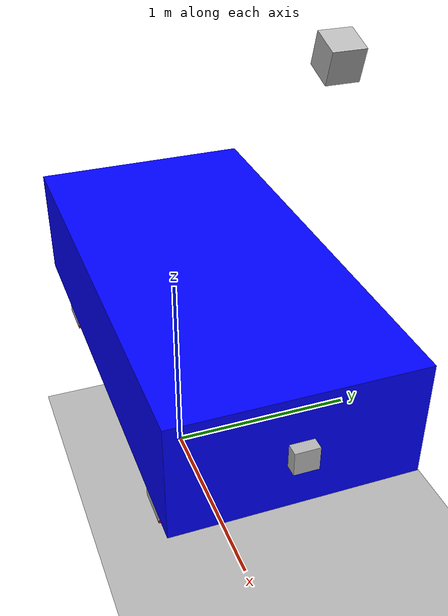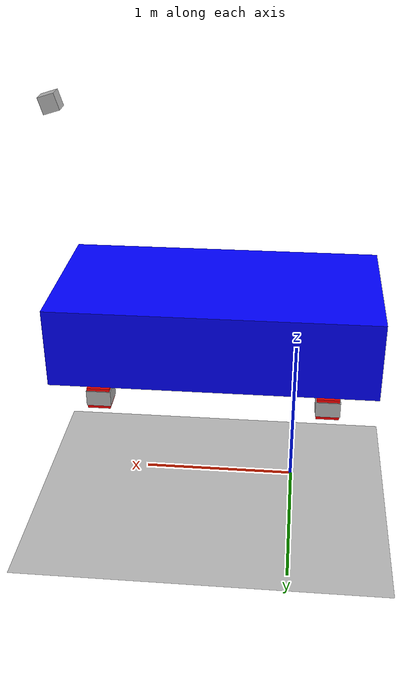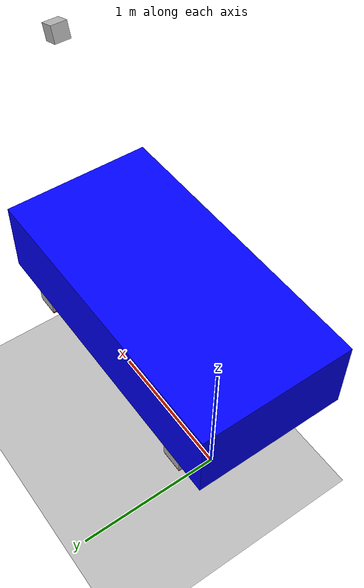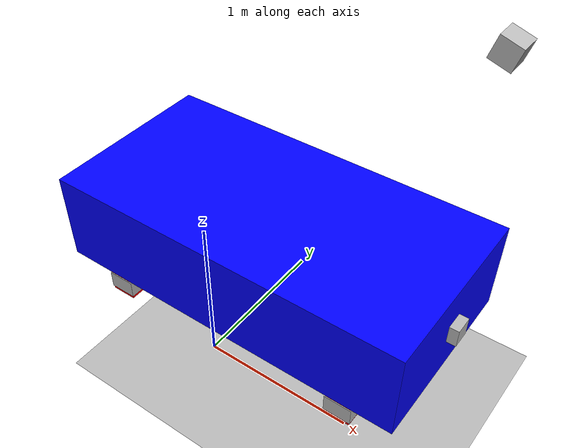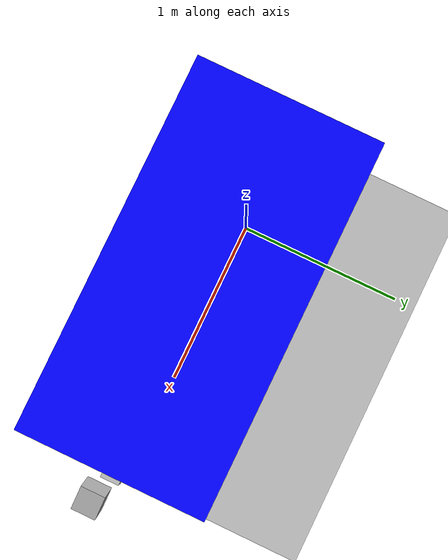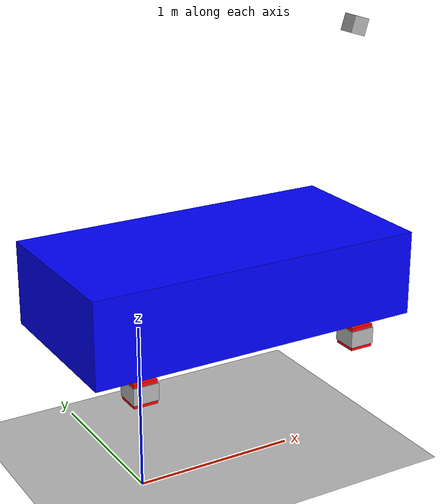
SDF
<?xml version="1.0" ?>
<sdf version="1.7">
    <world name="car_world">
        <physics name="1ms" type="ignored">
            <max_step_size>0.001</max_step_size>
            <real_time_factor>1.0</real_time_factor>
        </physics>
        <plugin
            filename="ignition-gazebo-physics-system"
            name="ignition::gazebo::systems::Physics">
        </plugin>
        <plugin
      	    filename="ignition-gazebo-sensors-system"
      	    name="ignition::gazebo::systems::Sensors">
      	    <render_engine>ogre</render_engine>
    	</plugin>
        <plugin
            filename="ignition-gazebo-user-commands-system"
            name="ignition::gazebo::systems::UserCommands">
        </plugin>
        <plugin
            filename="ignition-gazebo-scene-broadcaster-system"
            name="ignition::gazebo::systems::SceneBroadcaster">
        </plugin>

        <gui fullscreen="0">

            <!-- 3D scene -->
            <plugin filename="GzScene3D" name="3D View">
                <ignition-gui>
                <title>3D View</title>
                <property type="bool" key="showTitleBar">false</property>
                <property type="string" key="state">docked</property>
                </ignition-gui>

                <engine>ogre2</engine>
                <scene>scene</scene>
                <ambient_light>0.4 0.4 0.4</ambient_light>
                <background_color>0.8 0.8 0.8</background_color>
            </plugin>

            <!-- World control -->
            <plugin filename="WorldControl" name="World control">
                <ignition-gui>
                <title>World control</title>
                <property type="bool" key="showTitleBar">false</property>
                <property type="bool" key="resizable">false</property>
                <property type="double" key="height">72</property>
                <property type="double" key="width">121</property>
                <property type="double" key="z">1</property>

                <property type="string" key="state">floating</property>
                <anchors target="3D View">
                    <line own="left" target="left"/>
                    <line own="bottom" target="bottom"/>
                </anchors>
                </ignition-gui>

                <play_pause>true</play_pause>
                <step>true</step>
                <start_paused>true</start_paused>
                <service>/world/car_world/control</service>
                <stats_topic>/world/car_world/stats</stats_topic>
            </plugin>

            <!-- World statistics -->
            <plugin filename="WorldStats" name="World stats">
                <ignition-gui>
                <title>World stats</title>
                <property type="bool" key="showTitleBar">false</property>
                <property type="bool" key="resizable">false</property>
                <property type="double" key="height">110</property>
                <property type="double" key="width">290</property>
                <property type="double" key="z">1</property>

                <property type="string" key="state">floating</property>
                <anchors target="3D View">
                    <line own="right" target="right"/>
                    <line own="bottom" target="bottom"/>
                </anchors>
                </ignition-gui>

                <sim_time>true</sim_time>
                <real_time>true</real_time>
                <real_time_factor>true</real_time_factor>
                <iterations>true</iterations>
                <topic>/world/car_world/stats</topic>

            </plugin>

            <!-- Entity tree -->
            <plugin filename="EntityTree" name="Entity tree">
            </plugin>

            <plugin filename="KeyPublisher" name="Key Publisher"/>

            <plugin filename="ImageDisplay" name="Image Display"/>

        </gui>

        <light type="directional" name="sun">
            <cast_shadows>true</cast_shadows>
            <pose>0 0 10 0 0 0</pose>
            <diffuse>0.8 0.8 0.8 1</diffuse>
            <specular>0.2 0.2 0.2 1</specular>
            <attenuation>
                <range>1000</range>
                <constant>0.9</constant>
                <linear>0.01</linear>
                <quadratic>0.001</quadratic>
            </attenuation>
            <direction>-0.5 0.1 -0.9</direction>
        </light>

        <model name="ground_plane">
            <static>true</static>
            <link name="link">
                <collision name="collision">
                <geometry>
                    <plane>
                    <normal>0 0 1</normal>
                    </plane>
                </geometry>
                <surface>
                    <friction>
                        <ode>
                            <mu>0.7</mu>
                            <mu2>0.7</mu2>
                        </ode>
                    </friction>
                </surface>
                </collision>
            </link>
        </model>

        <model name='vehicle_blue' canonical_link='chassis'>
            <pose relative_to='world'>0 0 0 0 0 0</pose>   <!--the pose is relative to the world by default-->

            <!--chassis-->
            <link name='chassis'>
                <pose relative_to='__model__'>0.5 0 1.2 0 0 0</pose>
                <inertial> <!--inertial properties of the link mass, inertia matix-->
                    <mass>4.14395</mass>
                    <inertia>
                        <ixx>0.095329</ixx>
                        <ixy>0</ixy>
                        <ixz>0</ixz>
                        <iyy>0.381317</iyy>
                        <iyz>0</iyz>
                        <izz>0.476646</izz>
                    </inertia>
                </inertial>
                <visual name='visual'>
                    <geometry>
                        <box>
                            <size>2.0 1.0 0.5</size>
                        </box>
                    </geometry>
                    <!--Color of the link-->
                    <material>
                        <ambient>0.0 0.0 1.0 1</ambient>
                        <diffuse>0.0 0.0 1.0 1</diffuse>
                        <specular>0.0 0.0 1.0 1</specular>
                    </material>
                </visual>
                <collision name='collision'>
                    <geometry>
                        <box>
                            <size>2.0 1.0 0.5</size>
                        </box>
                    </geometry>
                </collision>
            </link>

             <!--arbitrary link left -->
            <link name="left_frame_front">
                <pose relative_to="chassis">-0.7 0.4 -0.35 -1.5707 0 0</pose> <!--angles are in radian-->
                <inertial>
                    <mass>1</mass>
                    <inertia>
                        <ixx>0.043333</ixx>
                        <ixy>0</ixy>
                        <ixz>0</ixz>
                        <iyy>0.043333</iyy>
                        <iyz>0</iyz>
                        <izz>0.08</izz>
                    </inertia>
                </inertial>
                <visual name='visual'>
                  <geometry>
                    <box>
                      <size>0.15 0.1 0.15</size>
                    </box>
                  </geometry>
                </visual>
            </link>

            <!--arbitrary frame right-->
            <link name="right_frame_front">
                <pose relative_to="chassis">-0.7 -0.4 -0.35 1.5707 0 0</pose> <!--angles are in radian-->
                <inertial>
                    <mass>1</mass>
                    <inertia>
                        <ixx>0.043333</ixx>
                        <ixy>0</ixy>
                        <ixz>0</ixz>
                        <iyy>0.043333</iyy>
                        <iyz>0</iyz>
                        <izz>0.08</izz>
                    </inertia>
                </inertial>
                <visual name='visual'>
                  <geometry>
                    <box>
                      <size>0.15 0.1 0.15</size>
                    </box>
                  </geometry>
                </visual>
            </link>

            <!--Left wheel-->
            <link name='left_wheel'>
                <pose relative_to="left_frame_front">0 0 0 0 0 0</pose> <!--angles are in radian-->
                <inertial>
                    <mass>1</mass>
                    <inertia>
                        <ixx>0.043333</ixx>
                        <ixy>0</ixy>
                        <ixz>0</ixz>
                        <iyy>0.043333</iyy>
                        <iyz>0</iyz>
                        <izz>0.08</izz>
                    </inertia>
                </inertial>
                <visual name='visual'>
                    <geometry>
                        <box>
                            <size>0.14 0.14 0.14</size>
                        </box>
                    </geometry>
                    <material>
                        <ambient>1.0 0.0 0.0 1</ambient>
                        <diffuse>1.0 0.0 0.0 1</diffuse>
                        <specular>1.0 0.0 0.0 1</specular>
                    </material>
                </visual>
                <collision name='collision'>
                    <geometry>
                        <cylinder>
                            <radius>0.1</radius>
                            <length>0.2</length>
                        </cylinder>
                    </geometry>
                    <surface>
                        <friction>
                            <ode>
                                <mu>1</mu>
                                <mu2>10</mu2>
                            </ode>
                        </friction>
                    </surface>
                </collision>
            </link>

            <!--The same as left wheel but with different position-->
            <link name='right_wheel'>
                <pose relative_to="right_frame_front">0 0 0 0 0 0</pose> <!--angles are in radian-->
                <inertial>
                    <mass>1</mass>
                    <inertia>
                        <ixx>0.043333</ixx>
                        <ixy>0</ixy>
                        <ixz>0</ixz>
                        <iyy>0.043333</iyy>
                        <iyz>0</iyz>
                        <izz>0.08</izz>
                    </inertia>
                </inertial>
                <visual name='visual'>
                    <geometry>
                        <box>
                            <size>0.14 0.14 0.14</size>
                        </box>
                    </geometry>
                    <material>
                        <ambient>1.0 0.0 0.0 1</ambient>
                        <diffuse>1.0 0.0 0.0 1</diffuse>
                        <specular>1.0 0.0 0.0 1</specular>
                    </material>
                </visual>
                <collision name='collision'>
                    <geometry>
                        <cylinder>
                            <radius>0.1</radius>
                            <length>0.2</length>
                        </cylinder>
                    </geometry>
                    <surface>
                        <friction>
                            <ode>
                                <mu>1</mu>
                                <mu2>10</mu2>
                            </ode>
                        </friction>
                    </surface>
                </collision>
            </link>

             <!--arbitrary link left -->
            <link name="left_frame">
                <pose relative_to="chassis">0.7 0.4 -0.35 -1.5707 0 0</pose> <!--angles are in radian-->
                <visual name='visual'>
                  <geometry>
                    <box>
                      <size>0.15 0.1 0.15</size>
                    </box>
                  </geometry>
                </visual>
            </link>

            <!--arbitrary frame right-->
            <link name="right_frame">
                <pose relative_to="chassis">0.7 -0.4 -0.35 1.5707 0 0</pose> <!--angles are in radian-->
                <visual name='visual'>
                  <geometry>
                    <box>
                      <size>0.15 0.1 0.15</size>
                    </box>
                  </geometry>
                </visual>
            </link>

             <!--arbitrary link left -->
            <link name="left_frame_back">
                <pose relative_to="chassis">0.7 0.4 -0.35 -1.5707 0 0</pose> <!--angles are in radian-->
                <inertial>
                    <mass>1</mass>
                    <inertia>
                        <ixx>0.043333</ixx>
                        <ixy>0</ixy>
                        <ixz>0</ixz>
                        <iyy>0.043333</iyy>
                        <iyz>0</iyz>
                        <izz>0.08</izz>
                    </inertia>
                </inertial>
                <visual name='visual'>
                  <geometry>
                    <box>
                      <size>0.15 0.1 0.15</size>
                    </box>
                  </geometry>
                </visual>
            </link>

            <!--arbitrary frame right-->
            <link name="right_frame_back">
                <pose relative_to="chassis">0.7 -0.4 -0.35 1.5707 0 0</pose> <!--angles are in radian-->
                <inertial>
                    <mass>1</mass>
                    <inertia>
                        <ixx>0.043333</ixx>
                        <ixy>0</ixy>
                        <ixz>0</ixz>
                        <iyy>0.043333</iyy>
                        <iyz>0</iyz>
                        <izz>0.08</izz>
                    </inertia>
                </inertial>
                <visual name='visual'>
                  <geometry>
                    <box>
                      <size>0.15 0.1 0.15</size>
                    </box>
                  </geometry>
                </visual>
            </link>

            <!--Left wheel-->
            <link name='left_wheel_back'>
                <pose relative_to="left_frame">0 0 0 3.14 0 0</pose> <!--angles are in radian-->
                <inertial>
                    <mass>10</mass>
                    <inertia>
                        <ixx>0.043333</ixx>
                        <ixy>0</ixy>
                        <ixz>0</ixz>
                        <iyy>0.043333</iyy>
                        <iyz>0</iyz>
                        <izz>0.08</izz>
                    </inertia>
                </inertial>
                <visual name='visual'>
                    <geometry>
                        <box>
                            <size>0.14 0.14 0.14</size>
                        </box>
                    </geometry>
                    <material>
                        <ambient>1.0 0.0 0.0 1</ambient>
                        <diffuse>1.0 0.0 0.0 1</diffuse>
                        <specular>1.0 0.0 0.0 1</specular>
                    </material>
                </visual>
                <collision name='collision'>
                    <geometry>
                        <cylinder>
                            <radius>0.1</radius>
                            <length>0.2</length>
                        </cylinder>
                    </geometry>
                    <surface>
                        <friction>
                            <ode>
                                <mu>0.9</mu>
                                <mu2>0.9</mu2>
                            </ode>
                        </friction>
                    </surface>
                </collision>
            </link>

            <!--The same as left wheel but with different position-->
            <link name='right_wheel_back'>
                <pose relative_to="right_frame">0 0 0 3.14 0 0</pose> <!--angles are in radian-->
                <inertial>
                    <mass>10</mass>
                    <inertia>
                        <ixx>0.043333</ixx>
                        <ixy>0</ixy>
                        <ixz>0</ixz>
                        <iyy>0.043333</iyy>
                        <iyz>0</iyz>
                        <izz>0.08</izz>
                    </inertia>
                </inertial>
                <visual name='visual'>
                    <geometry>
                        <box>
                            <size>0.14 0.14 0.14</size>
                        </box>
                    </geometry>
                    <material>
                        <ambient>1.0 0.0 0.0 1</ambient>
                        <diffuse>1.0 0.0 0.0 1</diffuse>
                        <specular>1.0 0.0 0.0 1</specular>
                    </material>
                </visual>
                <collision name='collision'>
                    <geometry>
                        <cylinder>
                            <radius>0.1</radius>
                            <length>0.2</length>
                        </cylinder>
                    </geometry>
                    <surface>
                        <friction>
                            <ode>
                                <mu>0.9</mu>
                                <mu2>0.9</mu2>
                            </ode>
                        </friction>
                    </surface>
                </collision>
            </link>

            <!--left wheel joint-->
            <joint name='left_wheel_joint' type='revolute'>
                <pose relative_to='left_wheel'/>
                <parent>left_frame_front</parent>
                <child>left_wheel</child>
                <axis>
                    <xyz expressed_in='__model__'>0 1 0</xyz> <!--can be descired to any frame or even arbitrary frames-->
                    <limit>
                        <lower>-1.79769e+308</lower>    <!--negative infinity-->
                        <upper>1.79769e+308</upper>     <!--positive infinity-->
                    </limit>
                </axis>
            </joint>

            <!--right wheel joint-->
            <joint name='right_wheel_joint' type='revolute'>
                <pose relative_to='right_wheel'/>
                <parent>right_frame_front</parent>
                <child>right_wheel</child>
                <axis>
                    <xyz expressed_in='__model__'>0 1 0</xyz>
                    <limit>
                        <lower>-1.79769e+308</lower>    <!--negative infinity-->
                        <upper>1.79769e+308</upper>     <!--positive infinity-->
                    </limit>
                </axis>
            </joint>

            <!--left wheel ancker joint-->
            <joint name='left_anker_joint' type='revolute'>
                <pose relative_to='left_frame'/>
                <parent>left_frame_back</parent>
                <child>left_frame</child>
                <axis>
                    <xyz expressed_in='__model__'>0 0 1</xyz>
                    <limit>
                        <lower>-0.689775</lower>    <!--negative infinity-->
                        <upper>0.78535</upper>     <!--positive infinity-->
                        <effort>100</effort>
                    </limit>
                </axis>
            </joint>

            <!--right wheel joint ancker joint-->
            <joint name='right_anker_joint' type='revolute'>
                <pose relative_to='right_frame'/>
                <parent>right_frame_back</parent>
                <child>right_frame</child>
                <axis>
                    <xyz expressed_in='__model__'>0 0 1</xyz>
                    <limit>
                        <lower>-0.78535</lower>    <!--negative infinity-->
                        <upper>0.689775</upper>     <!--positive infinity-->
                        <effort>100</effort>
                    </limit>
                </axis>
            </joint>

            <!--left wheel back joint-->
            <joint name='left_wheel_back_joint' type='revolute'>
                <pose relative_to='left_wheel_back'/>
                <parent>left_frame</parent>
                <child>left_wheel_back</child>
                <axis>
                    <xyz expressed_in='__model__'>0 1 0</xyz> <!--can be descired to any frame or even arbitrary frames-->
                    <limit>
                        <lower>-1.79769e+308</lower>    <!--negative infinity-->
                        <upper>1.79769e+308</upper>     <!--positive infinity-->
                    </limit>
                </axis>
            </joint>

            <!--right wheel back joint-->
            <joint name='right_wheel_back_joint' type='revolute'>
                <pose relative_to='right_wheel_back'/>
                <parent>right_frame</parent>
                <child>right_wheel_back</child>
                <axis>
                    <xyz expressed_in='__model__'>0 1 0</xyz>
                    <limit>
                        <lower>-1.79769e+308</lower>    <!--negative infinity-->
                        <upper>1.79769e+308</upper>     <!--positive infinity-->
                    </limit>
                </axis>
            </joint>

            <!-- damper joints -->
            <joint name="j1" type="prismatic">
                <pose relative_to='chassis'/>
		    <parent>chassis</parent>
		    <child>left_frame_front</child>
		    <axis>
		    	<xyz>0 0 1</xyz>
			    <dynamics>
				    <spring_reference>-0.1</spring_reference>
				    <spring_stiffness>300</spring_stiffness>
				    <damping>10</damping>
			    </dynamics>
		    </axis>
	    </joint>

	    <joint name="j2" type="prismatic">
                <pose relative_to='chassis'/>
            <parent>chassis</parent>
            <child>right_frame_front</child>
            <axis>
            	<xyz>0 0 1</xyz>
		    <dynamics>
			    <spring_reference>-0.1</spring_reference>
			    <spring_stiffness>300</spring_stiffness>
			    <damping>10</damping>
		    </dynamics>
            </axis>
	    </joint>

	    <joint name="j3" type="prismatic">
                <pose relative_to='chassis'/>
            <parent>chassis</parent>
            <child>left_frame_back</child>
            <axis>
            	<xyz>0 0 1</xyz>
		    <dynamics>
			    <spring_reference>-0.1</spring_reference>
			    <spring_stiffness>300</spring_stiffness>
			    <damping>10</damping>
		    </dynamics>
            </axis>
	    </joint>

	    <joint name="j4" type="prismatic">
                <pose relative_to='chassis'/>
            <parent>chassis</parent>
            <child>right_frame_back</child>
            <axis>
            	<xyz>0 0 1</xyz>
		    <dynamics>
			    <spring_reference>-0.1</spring_reference>
			    <spring_stiffness>300</spring_stiffness>
			    <damping>10</damping>
		    </dynamics>
            </axis>
	    </joint>

        <link name="camera">
            <pose relative_to='chassis'>0.95 0.05 1.35 0 0.3 0</pose>
            <inertial>
            <mass>0.1</mass>
            <inertia>
                <ixx>0.000166667</ixx>
                <iyy>0.000166667</iyy>
                <izz>0.000166667</izz>
            </inertia>
            </inertial>
            <collision name="collision">
            <geometry>
                <box>
                <size>0.1 0.1 0.1</size>
                </box>
            </geometry>
            </collision>
            <visual name="visual">
            <geometry>
                <box>
                <size>0.1 0.1 0.1</size>
                </box>
            </geometry>
            </visual>
            <sensor name="camera" type="camera">
            <camera>
                <horizontal_fov>1.047</horizontal_fov>
                <image>
                <width>1080</width>
                <height>810</height>
                </image>
                <clip>
                <near>0.1</near>
                <far>100</far>
                </clip>
            </camera>
            <always_on>1</always_on>
            <update_rate>30</update_rate>
            <visualize>true</visualize>
            <topic>camera</topic>
            </sensor>
	      </link>

        <link name="ultrasonic">
            <pose relative_to='chassis'>1 0 0 0 0 0</pose>
            <inertial>
            <mass>0.1</mass>
            <inertia>
                <ixx>0.000166667</ixx>
                <iyy>0.000166667</iyy>
                <izz>0.000166667</izz>
            </inertia>
            </inertial>
            <collision name="collision">
            <geometry>
                <box>
                <size>0.1 0.1 0.1</size>
                </box>
            </geometry>
            </collision>
            <visual name="visual">
            <geometry>
                <box>
                <size>0.1 0.1 0.1</size>
                </box>
            </geometry>
            </visual>
          <sensor name='gpu_lidar' type='gpu_lidar'>"
            <topic>lidar</topic>
            <update_rate>10</update_rate>
            <ray>
                <scan>
                    <horizontal>
                        <samples>640</samples>
                        <resolution>1</resolution>
                        <min_angle>-0.3927</min_angle>
                        <max_angle>0.3927</max_angle>
                    </horizontal>
                    <vertical>
                        <samples>1</samples>
                        <resolution>0.01</resolution>
                        <min_angle>0</min_angle>
                        <max_angle>0</max_angle>
                    </vertical>
                </scan>
                <range>
                    <min>0.008</min>
                    <max>100.0</max>
                    <resolution>0.01</resolution>
                </range>
            </ray>
            <always_on>1</always_on>
            <visualize>true</visualize>
          </sensor>
        </link>

	      <joint name='camera_joint' type='fixed'>
                <parent>chassis</parent>
                <child>camera</child>
              </joint>

        <joint name='sensor_joint' type='fixed'>
            <parent>chassis</parent>
            <child>ultrasonic</child>
        </joint>

        <plugin filename="SampleSystem"
            	      name="ignition::gazebo::systems::SampleSystem">
            	      <joint_name>right_wheel_joint</joint_name>
                      <joint_name_2>right_anker_joint</joint_name_2>
                      <joint_name_3>left_wheel_joint</joint_name_3>
                      <joint_name_4>left_anker_joint</joint_name_4>
                      <p_gain>10</p_gain>
                      <d_gain>5</d_gain>
                      <use_force_commands>false</use_force_commands>
    		</plugin>

        </model>

        <model name='my_mesh'>
            <pose realitve_to="world">0 0 0 0 0 0</pose>
	      <static>1</static>
	      <link name='body'>
            <visual name='visual'>
            <geometry>
                <mesh>
                <uri>file://oval_strecke.dae</uri>
                </mesh>
            </geometry>
            </visual>
            <self_collide>0</self_collide>
            <enable_wind>0</enable_wind>
            <kinematic>0</kinematic>
	      </link>
    	</model>

        <plugin filename="libignition-gazebo-triggered-publisher-system.so"
		name="ignition::gazebo::systems::TriggeredPublisher">
	    <input type="ignition.msgs.Int32" topic="/keyboard/keypress">
		<match field="data">16777235</match>
	    </input>
	    <output type="ignition.msgs.Double" topic="/set_motor_level_msg">
		data: 500
	    </output>
	</plugin>

	<plugin filename="libignition-gazebo-triggered-publisher-system.so"
		name="ignition::gazebo::systems::TriggeredPublisher">
	    <input type="ignition.msgs.Int32" topic="/keyboard/keypress">
		<match field="data">16777234</match>
	    </input>
	    <output type="ignition.msgs.Double" topic="/set_steering_level_msg">
		data: 800
	    </output>
	</plugin>

	<plugin filename="libignition-gazebo-triggered-publisher-system.so"
		name="ignition::gazebo::systems::TriggeredPublisher">
	    <input type="ignition.msgs.Int32" topic="/keyboard/keypress">
		<match field="data">16777236</match>
	    </input>
	    <output type="ignition.msgs.Double" topic="/set_steering_level_msg">
		data: -800
	    </output>
	</plugin>

	<plugin filename="libignition-gazebo-triggered-publisher-system.so"
		name="ignition::gazebo::systems::TriggeredPublisher">
	    <input type="ignition.msgs.Int32" topic="/keyboard/keypress">
		<match field="data">16777237</match>
	    </input>
	    <output type="ignition.msgs.Double" topic="/set_motor_level_msg">
		data: -500
	    </output>
	</plugin>
    </world>
</sdf>
